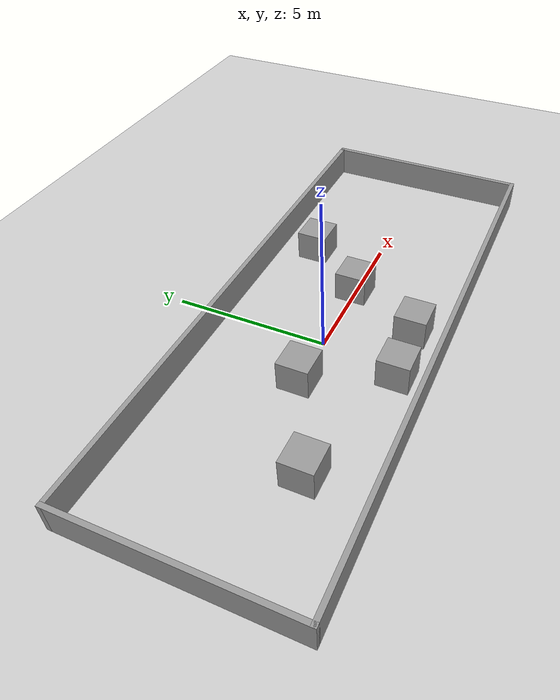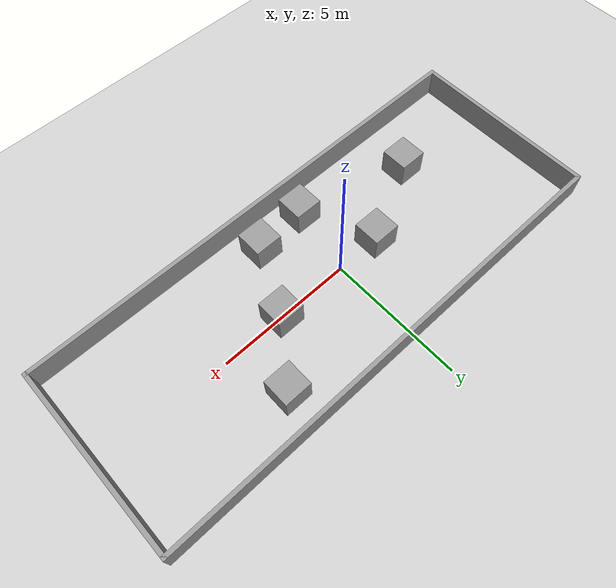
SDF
<sdf version="1.7">
 <world name="default">
  <light name="sun" type="directional">
   <pose>0 0 10 0 -0 0</pose>
   <diffuse>0.8 0.8 0.8 1</diffuse>
   <specular>0.2 0.2 0.2 1</specular>
   <attenuation>
    <range>1000</range>
    <constant>0.9</constant>
    <linear>0.01</linear>
    <quadratic>0.001</quadratic>
   </attenuation>
   <direction>-0.5 0.1 -0.9</direction>
   <spot><inner_angle>0</inner_angle><outer_angle>0</outer_angle><falloff>0</falloff></spot>
  </light>
  <model name="ground_plane">
   <static>1</static>
   <link name="link">
    <collision name="collision">
     <geometry><plane><normal>0 0 1</normal><size>100 100</size></plane></geometry>
     <surface><friction><ode><mu>100</mu><mu2>50</mu2></ode></friction></surface>
    </collision>
    <visual name="visual">
     <cast_shadows>0</cast_shadows>
     <geometry><plane><normal>0 0 1</normal><size>100 100</size></plane></geometry>
     <material>
      <script><uri>file://media/materials/scripts/gazebo.material</uri><name>Gazebo/Grey</name></script>
     </material>
    </visual>
   </link>
  </model>
  <gravity>0 0 -9.8</gravity>
  <magnetic_field>6e-06 2.3e-05 -4.2e-05</magnetic_field>
  <atmosphere type="adiabatic"/>
  <physics type="ode">
   <max_step_size>0.001</max_step_size>
   <real_time_factor>1</real_time_factor>
   <real_time_update_rate>1000</real_time_update_rate>
  </physics>
  <scene><ambient>0.4 0.4 0.4 1</ambient><background>0.7 0.7 0.7 1</background><shadows>1</shadows></scene>
  <audio><device>default</device></audio>
  <spherical_coordinates>
   <surface_model>EARTH_WGS84</surface_model>
   <latitude_deg>0</latitude_deg>
   <longitude_deg>0</longitude_deg>
   <elevation>0</elevation>
   <heading_deg>0</heading_deg>
  </spherical_coordinates>
  <model name="map">
   <pose>0.753 -0.024 0 0 -0 0</pose>
   <link name="Wall_34">
    <collision name="Wall_34_Collision">
     <geometry><box><size>7 0.15 1</size></box></geometry>
     <pose>0 0 0.5 0 -0 0</pose>
    </collision>
    <visual name="Wall_34_Visual">
     <pose>0 0 0.5 0 -0 0</pose>
     <geometry><box><size>7 0.15 1</size></box></geometry>
     <material>
      <script><uri>file://media/materials/scripts/gazebo.material</uri><name>Gazebo/Grey</name></script>
      <ambient>1 1 1 1</ambient>
     </material>
     <meta><layer>0</layer></meta>
    </visual>
    <pose>-8.925 -0 0 0 -0 -1.5708</pose>
   </link>
   <link name="Wall_35">
    <collision name="Wall_35_Collision">
     <geometry><box><size>18 0.15 1</size></box></geometry>
     <pose>0 0 0.5 0 -0 0</pose>
    </collision>
    <visual name="Wall_35_Visual">
     <pose>0 0 0.5 0 -0 0</pose>
     <geometry><box><size>18 0.15 1</size></box></geometry>
     <material>
      <script><uri>file://media/materials/scripts/gazebo.material</uri><name>Gazebo/Grey</name></script>
      <ambient>1 1 1 1</ambient>
     </material>
     <meta><layer>0</layer></meta>
    </visual>
    <pose>-0 -3.425 0 0 -0 0</pose>
   </link>
   <link name="Wall_37">
    <collision name="Wall_37_Collision">
     <geometry><box><size>18 0.15 1</size></box></geometry>
     <pose>0 0 0.5 0 -0 0</pose>
    </collision>
    <visual name="Wall_37_Visual">
     <pose>0 0 0.5 0 -0 0</pose>
     <geometry><box><size>18 0.15 1</size></box></geometry>
     <material>
      <script><uri>file://media/materials/scripts/gazebo.material</uri><name>Gazebo/Grey</name></script>
      <ambient>1 1 1 1</ambient>
     </material>
     <meta><layer>0</layer></meta>
    </visual>
    <pose>-0 3.425 0 0 -0 3.14159</pose>
   </link>
   <link name="Wall_39">
    <collision name="Wall_39_Collision">
     <geometry><box><size>6.99961 0.15 1</size></box></geometry>
     <pose>0 0 0.5 0 -0 0</pose>
    </collision>
    <visual name="Wall_39_Visual">
     <pose>0 0 0.5 0 -0 0</pose>
     <geometry><box><size>6.99961 0.15 1</size></box></geometry>
     <material>
      <script><uri>file://media/materials/scripts/gazebo.material</uri><name>Gazebo/Grey</name></script>
      <ambient>1 1 1 1</ambient>
     </material>
     <meta><layer>0</layer></meta>
    </visual>
    <pose>8.925 -0 0 0 -0 -1.5708</pose>
   </link>
   <static>1</static>
  </model>
  <model name="unit_box">
   <pose>-1.62599 0.013084 0.5 0 -0 0</pose>
   <link name="link">
    <inertial>
     <mass>1</mass>
     <inertia>
      <ixx>0.166667</ixx>
      <ixy>0</ixy>
      <ixz>0</ixz>
      <iyy>0.166667</iyy>
      <iyz>0</iyz>
      <izz>0.166667</izz>
     </inertia>
    </inertial>
    <collision name="collision"><geometry><box><size>1 1 1</size></box></geometry></collision>
    <visual name="visual">
     <geometry><box><size>1 1 1</size></box></geometry>
     <material>
      <script><name>Gazebo/Grey</name><uri>file://media/materials/scripts/gazebo.material</uri></script>
     </material>
    </visual>
   </link>
  </model>
  <model name="unit_box_0">
   <pose>-0.415886 -2.50176 0.5 0 -0 0</pose>
   <link name="link">
    <inertial>
     <mass>1</mass>
     <inertia>
      <ixx>0.166667</ixx>
      <ixy>0</ixy>
      <ixz>0</ixz>
      <iyy>0.166667</iyy>
      <iyz>0</iyz>
      <izz>0.166667</izz>
     </inertia>
    </inertial>
    <collision name="collision"><geometry><box><size>1 1 1</size></box></geometry></collision>
    <visual name="visual">
     <geometry><box><size>1 1 1</size></box></geometry>
     <material>
      <script><name>Gazebo/Grey</name><uri>file://media/materials/scripts/gazebo.material</uri></script>
     </material>
    </visual>
   </link>
  </model>
  <model name="unit_box_1">
   <pose>-4.51888 -1.49486 0.5 0 -0 0</pose>
   <link name="link">
    <inertial>
     <mass>1</mass>
     <inertia>
      <ixx>0.166667</ixx>
      <ixy>0</ixy>
      <ixz>0</ixz>
      <iyy>0.166667</iyy>
      <iyz>0</iyz>
      <izz>0.166667</izz>
     </inertia>
    </inertial>
    <collision name="collision"><geometry><box><size>1 1 1</size></box></geometry></collision>
    <visual name="visual">
     <geometry><box><size>1 1 1</size></box></geometry>
     <material>
      <script><name>Gazebo/Grey</name><uri>file://media/materials/scripts/gazebo.material</uri></script>
     </material>
    </visual>
   </link>
  </model>
  <model name="unit_box_2">
   <pose>2.65347 0.025208 0.5 0 -0 0</pose>
   <link name="link">
    <inertial>
     <mass>1</mass>
     <inertia>
      <ixx>0.166667</ixx>
      <ixy>0</ixy>
      <ixz>0</ixz>
      <iyy>0.166667</iyy>
      <iyz>0</iyz>
      <izz>0.166667</izz>
     </inertia>
    </inertial>
    <collision name="collision"><geometry><box><size>1 1 1</size></box></geometry></collision>
    <visual name="visual">
     <geometry><box><size>1 1 1</size></box></geometry>
     <material>
      <script><name>Gazebo/Grey</name><uri>file://media/materials/scripts/gazebo.material</uri></script>
     </material>
    </visual>
   </link>
  </model>
  <model name="unit_box_3">
   <pose>1.4928 -2.35232 0.5 0 -0 0</pose>
   <link name="link">
    <inertial>
     <mass>1</mass>
     <inertia>
      <ixx>0.166667</ixx>
      <ixy>0</ixy>
      <ixz>0</ixz>
      <iyy>0.166667</iyy>
      <iyz>0</iyz>
      <izz>0.166667</izz>
     </inertia>
    </inertial>
    <collision name="collision"><geometry><box><size>1 1 1</size></box></geometry></collision>
    <visual name="visual">
     <geometry><box><size>1 1 1</size></box></geometry>
     <material>
      <script><name>Gazebo/Grey</name><uri>file://media/materials/scripts/gazebo.material</uri></script>
     </material>
    </visual>
   </link>
  </model>
  <model name="unit_box_4">
   <pose>4.18896 2.06212 0.5 0 -0 0</pose>
   <link name="link">
    <inertial>
     <mass>1</mass>
     <inertia>
      <ixx>0.166667</ixx>
      <ixy>0</ixy>
      <ixz>0</ixz>
      <iyy>0.166667</iyy>
      <iyz>0</iyz>
      <izz>0.166667</izz>
     </inertia>
    </inertial>
    <collision name="collision"><geometry><box><size>1 1 1</size></box></geometry></collision>
    <visual name="visual">
     <geometry><box><size>1 1 1</size></box></geometry>
     <material>
      <script><name>Gazebo/Grey</name><uri>file://media/materials/scripts/gazebo.material</uri></script>
     </material>
    </visual>
   </link>
  </model>
 </world>
</sdf>
